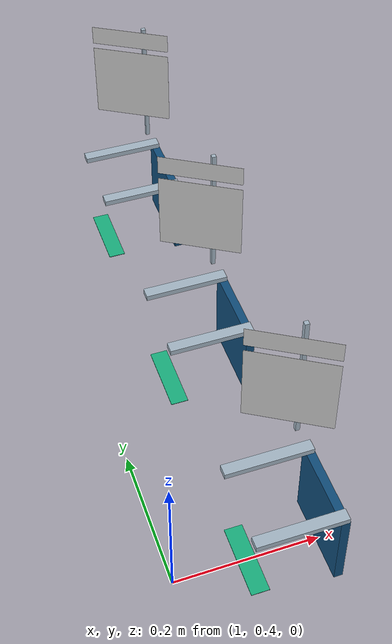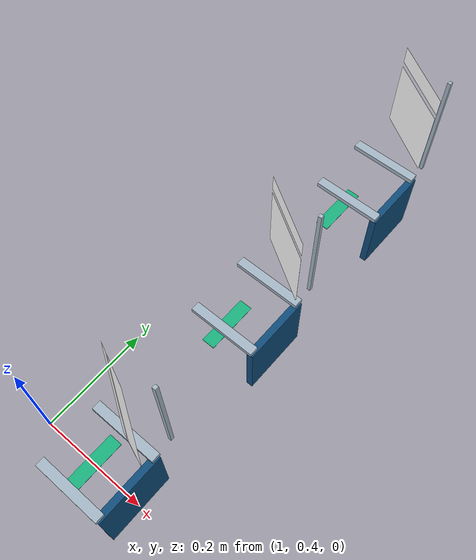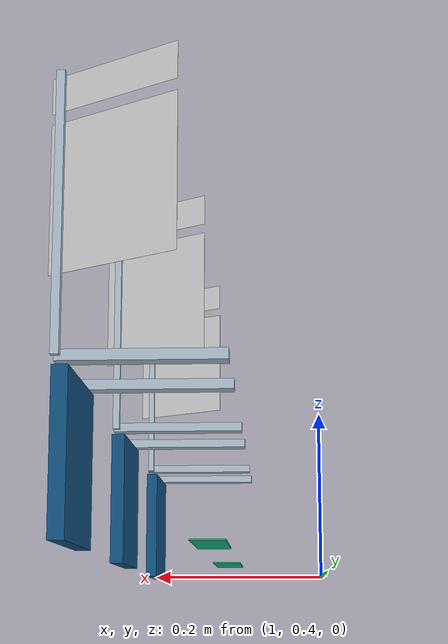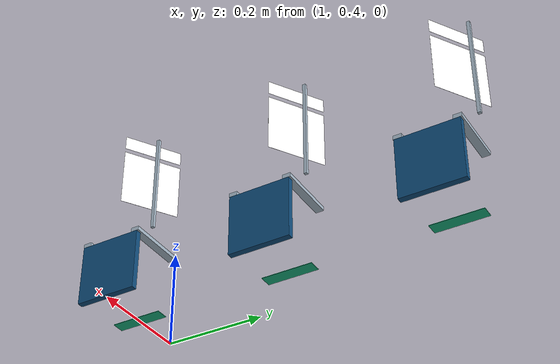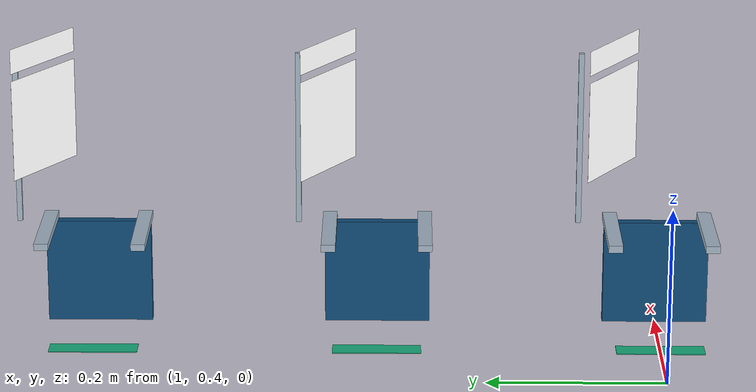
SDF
<?xml version='1.0' encoding='utf-8'?>
<sdf version="1.9">
  <model name="stations">
    <static>true</static>
    <self_collide>true</self_collide>
    <link name="structure">
      <pose>0 0 0 0 0 0</pose>
      <inertial>
        <mass>0.1</mass>
        <inertia>
          <ixx>0.00016666666666666672</ixx>
          <iyy>0.00016666666666666672</iyy>
          <izz>0.00016666666666666672</izz>
          <ixy>0</ixy>
          <ixz>0</ixz>
          <iyz>0</iyz>
        </inertia>
      </inertial>
      <visual name="a_shelf_-0.054">
        <pose>1.145 0.34600000000000003 0.126 0 0 0</pose>
        <geometry>
          <box>
            <size>0.12 0.016 0.008</size>
          </box>
        </geometry>
        <material>
          <ambient>0.65 0.72 0.78 1</ambient>
          <diffuse>0.65 0.72 0.78 1</diffuse>
        </material>
      </visual>
      <collision name="a_shelf_-0.054_collision">
        <pose>1.145 0.34600000000000003 0.126 0 0 0</pose>
        <geometry>
          <box>
            <size>0.12 0.016 0.008</size>
          </box>
        </geometry>
        <surface>
          <friction>
            <ode>
              <mu>0.9</mu>
              <mu2>0.9</mu2>
            </ode>
          </friction>
        </surface>
      </collision>
      <visual name="a_shelf_0.054">
        <pose>1.145 0.454 0.126 0 0 0</pose>
        <geometry>
          <box>
            <size>0.12 0.016 0.008</size>
          </box>
        </geometry>
        <material>
          <ambient>0.65 0.72 0.78 1</ambient>
          <diffuse>0.65 0.72 0.78 1</diffuse>
        </material>
      </visual>
      <collision name="a_shelf_0.054_collision">
        <pose>1.145 0.454 0.126 0 0 0</pose>
        <geometry>
          <box>
            <size>0.12 0.016 0.008</size>
          </box>
        </geometry>
        <surface>
          <friction>
            <ode>
              <mu>0.9</mu>
              <mu2>0.9</mu2>
            </ode>
          </friction>
        </surface>
      </collision>
      <visual name="a_shelf_support">
        <pose>1.201 0.4 0.06 0 0 0</pose>
        <geometry>
          <box>
            <size>0.012 0.12 0.12</size>
          </box>
        </geometry>
        <material>
          <ambient>0.06 0.30 0.48 1</ambient>
          <diffuse>0.06 0.30 0.48 1</diffuse>
        </material>
      </visual>
      <collision name="a_shelf_support_collision">
        <pose>1.201 0.4 0.06 0 0 0</pose>
        <geometry>
          <box>
            <size>0.012 0.12 0.12</size>
          </box>
        </geometry>
        <surface>
          <friction>
            <ode>
              <mu>0.9</mu>
              <mu2>0.9</mu2>
            </ode>
          </friction>
        </surface>
      </collision>
      <visual name="a_sign_post">
        <pose>1.199 0.49 0.22 0 0 0</pose>
        <geometry>
          <box>
            <size>0.006 0.006 0.2</size>
          </box>
        </geometry>
        <material>
          <ambient>0.65 0.72 0.78 1</ambient>
          <diffuse>0.65 0.72 0.78 1</diffuse>
        </material>
      </visual>
      <visual name="a_qr">
        <pose>1.168 0.455 0.25 1.5707963267948966 0 -0.5492036732051035</pose>
        <geometry>
          <plane>
            <normal>0 0 1</normal>
            <size>0.115 0.115</size>
          </plane>
        </geometry>
        <material>
          <ambient>1 1 1 1</ambient>
          <diffuse>1 1 1 1</diffuse>
          <emissive>0.35 0.35 0.35 1</emissive>
          <pbr>
            <metal>
              <albedo_map>../../textures/station_a_qr.png</albedo_map>
              <metalness>0</metalness>
              <roughness>1</roughness>
            </metal>
          </pbr>
        </material>
        <cast_shadows>false</cast_shadows>
      </visual>
      <visual name="a_label">
        <pose>1.168 0.455 0.33 1.5707963267948966 0 -0.5492036732051035</pose>
        <geometry>
          <plane>
            <normal>0 0 1</normal>
            <size>0.115 0.028</size>
          </plane>
        </geometry>
        <material>
          <ambient>1 1 1 1</ambient>
          <diffuse>1 1 1 1</diffuse>
          <emissive>0.35 0.35 0.35 1</emissive>
          <pbr>
            <metal>
              <albedo_map>../../textures/station_a_label.png</albedo_map>
              <metalness>0</metalness>
              <roughness>1</roughness>
            </metal>
          </pbr>
        </material>
        <cast_shadows>false</cast_shadows>
      </visual>
      <visual name="a_dock_mark">
        <pose>1.1 0.4 0.0007 0 0 0</pose>
        <geometry>
          <box>
            <size>0.025 0.1 0.001</size>
          </box>
        </geometry>
        <material>
          <ambient>0.1 0.7 0.5 1</ambient>
          <diffuse>0.1 0.7 0.5 1</diffuse>
        </material>
      </visual>
      <visual name="b_shelf_-0.054">
        <pose>1.145 0.6659999999999999 0.126 0 0 0</pose>
        <geometry>
          <box>
            <size>0.12 0.016 0.008</size>
          </box>
        </geometry>
        <material>
          <ambient>0.65 0.72 0.78 1</ambient>
          <diffuse>0.65 0.72 0.78 1</diffuse>
        </material>
      </visual>
      <collision name="b_shelf_-0.054_collision">
        <pose>1.145 0.6659999999999999 0.126 0 0 0</pose>
        <geometry>
          <box>
            <size>0.12 0.016 0.008</size>
          </box>
        </geometry>
        <surface>
          <friction>
            <ode>
              <mu>0.9</mu>
              <mu2>0.9</mu2>
            </ode>
          </friction>
        </surface>
      </collision>
      <visual name="b_shelf_0.054">
        <pose>1.145 0.774 0.126 0 0 0</pose>
        <geometry>
          <box>
            <size>0.12 0.016 0.008</size>
          </box>
        </geometry>
        <material>
          <ambient>0.65 0.72 0.78 1</ambient>
          <diffuse>0.65 0.72 0.78 1</diffuse>
        </material>
      </visual>
      <collision name="b_shelf_0.054_collision">
        <pose>1.145 0.774 0.126 0 0 0</pose>
        <geometry>
          <box>
            <size>0.12 0.016 0.008</size>
          </box>
        </geometry>
        <surface>
          <friction>
            <ode>
              <mu>0.9</mu>
              <mu2>0.9</mu2>
            </ode>
          </friction>
        </surface>
      </collision>
      <visual name="b_shelf_support">
        <pose>1.201 0.72 0.06 0 0 0</pose>
        <geometry>
          <box>
            <size>0.012 0.12 0.12</size>
          </box>
        </geometry>
        <material>
          <ambient>0.06 0.30 0.48 1</ambient>
          <diffuse>0.06 0.30 0.48 1</diffuse>
        </material>
      </visual>
      <collision name="b_shelf_support_collision">
        <pose>1.201 0.72 0.06 0 0 0</pose>
        <geometry>
          <box>
            <size>0.012 0.12 0.12</size>
          </box>
        </geometry>
        <surface>
          <friction>
            <ode>
              <mu>0.9</mu>
              <mu2>0.9</mu2>
            </ode>
          </friction>
        </surface>
      </collision>
      <visual name="b_sign_post">
        <pose>1.199 0.8099999999999999 0.22 0 0 0</pose>
        <geometry>
          <box>
            <size>0.006 0.006 0.2</size>
          </box>
        </geometry>
        <material>
          <ambient>0.65 0.72 0.78 1</ambient>
          <diffuse>0.65 0.72 0.78 1</diffuse>
        </material>
      </visual>
      <visual name="b_qr">
        <pose>1.168 0.775 0.25 1.5707963267948966 0 -0.5492036732051035</pose>
        <geometry>
          <plane>
            <normal>0 0 1</normal>
            <size>0.115 0.115</size>
          </plane>
        </geometry>
        <material>
          <ambient>1 1 1 1</ambient>
          <diffuse>1 1 1 1</diffuse>
          <emissive>0.35 0.35 0.35 1</emissive>
          <pbr>
            <metal>
              <albedo_map>../../textures/station_b_qr.png</albedo_map>
              <metalness>0</metalness>
              <roughness>1</roughness>
            </metal>
          </pbr>
        </material>
        <cast_shadows>false</cast_shadows>
      </visual>
      <visual name="b_label">
        <pose>1.168 0.775 0.33 1.5707963267948966 0 -0.5492036732051035</pose>
        <geometry>
          <plane>
            <normal>0 0 1</normal>
            <size>0.115 0.028</size>
          </plane>
        </geometry>
        <material>
          <ambient>1 1 1 1</ambient>
          <diffuse>1 1 1 1</diffuse>
          <emissive>0.35 0.35 0.35 1</emissive>
          <pbr>
            <metal>
              <albedo_map>../../textures/station_b_label.png</albedo_map>
              <metalness>0</metalness>
              <roughness>1</roughness>
            </metal>
          </pbr>
        </material>
        <cast_shadows>false</cast_shadows>
      </visual>
      <visual name="b_dock_mark">
        <pose>1.1 0.72 0.0007 0 0 0</pose>
        <geometry>
          <box>
            <size>0.025 0.1 0.001</size>
          </box>
        </geometry>
        <material>
          <ambient>0.1 0.7 0.5 1</ambient>
          <diffuse>0.1 0.7 0.5 1</diffuse>
        </material>
      </visual>
      <visual name="c_shelf_-0.054">
        <pose>1.145 0.986 0.126 0 0 0</pose>
        <geometry>
          <box>
            <size>0.12 0.016 0.008</size>
          </box>
        </geometry>
        <material>
          <ambient>0.65 0.72 0.78 1</ambient>
          <diffuse>0.65 0.72 0.78 1</diffuse>
        </material>
      </visual>
      <collision name="c_shelf_-0.054_collision">
        <pose>1.145 0.986 0.126 0 0 0</pose>
        <geometry>
          <box>
            <size>0.12 0.016 0.008</size>
          </box>
        </geometry>
        <surface>
          <friction>
            <ode>
              <mu>0.9</mu>
              <mu2>0.9</mu2>
            </ode>
          </friction>
        </surface>
      </collision>
      <visual name="c_shelf_0.054">
        <pose>1.145 1.094 0.126 0 0 0</pose>
        <geometry>
          <box>
            <size>0.12 0.016 0.008</size>
          </box>
        </geometry>
        <material>
          <ambient>0.65 0.72 0.78 1</ambient>
          <diffuse>0.65 0.72 0.78 1</diffuse>
        </material>
      </visual>
      <collision name="c_shelf_0.054_collision">
        <pose>1.145 1.094 0.126 0 0 0</pose>
        <geometry>
          <box>
            <size>0.12 0.016 0.008</size>
          </box>
        </geometry>
        <surface>
          <friction>
            <ode>
              <mu>0.9</mu>
              <mu2>0.9</mu2>
            </ode>
          </friction>
        </surface>
      </collision>
      <visual name="c_shelf_support">
        <pose>1.201 1.04 0.06 0 0 0</pose>
        <geometry>
          <box>
            <size>0.012 0.12 0.12</size>
          </box>
        </geometry>
        <material>
          <ambient>0.06 0.30 0.48 1</ambient>
          <diffuse>0.06 0.30 0.48 1</diffuse>
        </material>
      </visual>
      <collision name="c_shelf_support_collision">
        <pose>1.201 1.04 0.06 0 0 0</pose>
        <geometry>
          <box>
            <size>0.012 0.12 0.12</size>
          </box>
        </geometry>
        <surface>
          <friction>
            <ode>
              <mu>0.9</mu>
              <mu2>0.9</mu2>
            </ode>
          </friction>
        </surface>
      </collision>
      <visual name="c_sign_post">
        <pose>1.199 1.1300000000000001 0.22 0 0 0</pose>
        <geometry>
          <box>
            <size>0.006 0.006 0.2</size>
          </box>
        </geometry>
        <material>
          <ambient>0.65 0.72 0.78 1</ambient>
          <diffuse>0.65 0.72 0.78 1</diffuse>
        </material>
      </visual>
      <visual name="c_qr">
        <pose>1.168 1.095 0.25 1.5707963267948966 0 -0.5492036732051035</pose>
        <geometry>
          <plane>
            <normal>0 0 1</normal>
            <size>0.115 0.115</size>
          </plane>
        </geometry>
        <material>
          <ambient>1 1 1 1</ambient>
          <diffuse>1 1 1 1</diffuse>
          <emissive>0.35 0.35 0.35 1</emissive>
          <pbr>
            <metal>
              <albedo_map>../../textures/station_c_qr.png</albedo_map>
              <metalness>0</metalness>
              <roughness>1</roughness>
            </metal>
          </pbr>
        </material>
        <cast_shadows>false</cast_shadows>
      </visual>
      <visual name="c_label">
        <pose>1.168 1.095 0.33 1.5707963267948966 0 -0.5492036732051035</pose>
        <geometry>
          <plane>
            <normal>0 0 1</normal>
            <size>0.115 0.028</size>
          </plane>
        </geometry>
        <material>
          <ambient>1 1 1 1</ambient>
          <diffuse>1 1 1 1</diffuse>
          <emissive>0.35 0.35 0.35 1</emissive>
          <pbr>
            <metal>
              <albedo_map>../../textures/station_c_label.png</albedo_map>
              <metalness>0</metalness>
              <roughness>1</roughness>
            </metal>
          </pbr>
        </material>
        <cast_shadows>false</cast_shadows>
      </visual>
      <visual name="c_dock_mark">
        <pose>1.1 1.04 0.0007 0 0 0</pose>
        <geometry>
          <box>
            <size>0.025 0.1 0.001</size>
          </box>
        </geometry>
        <material>
          <ambient>0.1 0.7 0.5 1</ambient>
          <diffuse>0.1 0.7 0.5 1</diffuse>
        </material>
      </visual>
    </link>
  </model>
</sdf>
